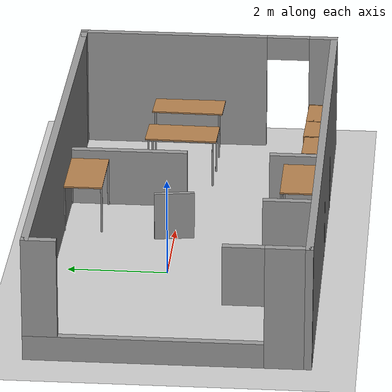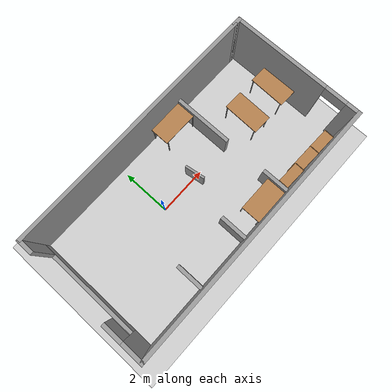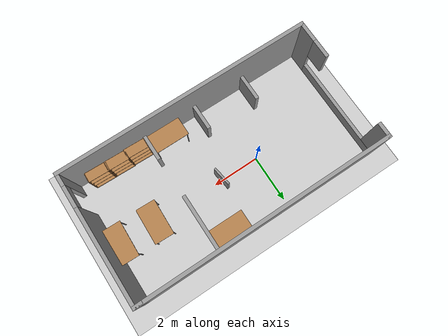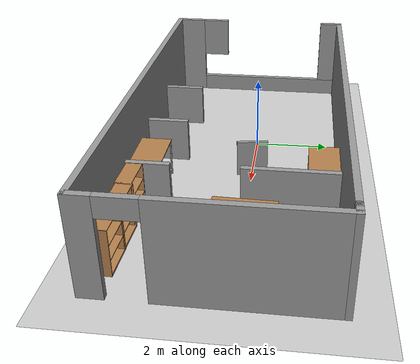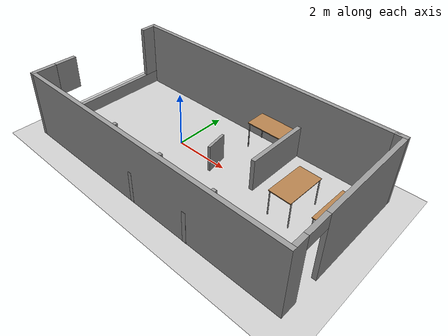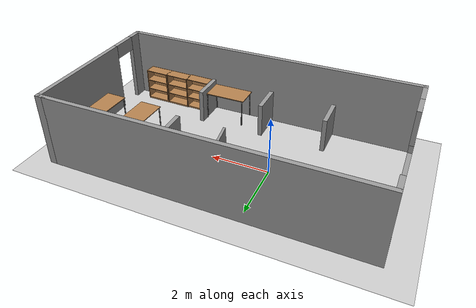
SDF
<sdf version="1.6">
 <world name="default">
  <model name="ground_plane">
   <static>1</static>
   <link name="link">
    <collision name="collision">
     <geometry><plane><normal>0 0 1</normal><size>100 100</size></plane></geometry>
     <surface><friction><ode><mu>100</mu><mu2>50</mu2></ode></friction></surface>
    </collision>
    <visual name="visual">
     <cast_shadows>0</cast_shadows>
     <geometry><plane><normal>0 0 1</normal><size>100 100</size></plane></geometry>
     <material>
      <script><uri>file://media/materials/scripts/gazebo.material</uri><name>Gazebo/Grey</name></script>
     </material>
    </visual>
   </link>
  </model>
  <model name="embd">
   <pose>1.33015 -0.337101 0 0 -0 0</pose>
   <link name="Wall_0">
    <collision name="Wall_0_Collision">
     <geometry><box><size>10.75 0.15 2.5</size></box></geometry>
     <pose>0 0 1.25 0 -0 0</pose>
    </collision>
    <visual name="Wall_0_Visual">
     <pose>0 0 1.25 0 -0 0</pose>
     <geometry><box><size>10.75 0.15 2.5</size></box></geometry>
     <material>
      <script><uri>file://media/materials/scripts/gazebo.material</uri><name>Gazebo/Grey</name></script>
      <ambient>1 1 1 1</ambient>
     </material>
     <meta><layer>0</layer></meta>
    </visual>
    <pose>0 -2.67233 0 0 -0 3.14159</pose>
   </link>
   <link name="Wall_10">
    <collision name="Wall_10_Collision">
     <geometry><box><size>2.5 0.15 1.2</size></box></geometry>
     <pose>0 0 0.6 0 -0 0</pose>
    </collision>
    <visual name="Wall_10_Visual">
     <pose>0 0 0.6 0 -0 0</pose>
     <geometry><box><size>2.5 0.15 1.2</size></box></geometry>
     <material>
      <script><uri>file://media/materials/scripts/gazebo.material</uri><name>Gazebo/Grey</name></script>
      <ambient>1 1 1 1</ambient>
     </material>
     <meta><layer>0</layer></meta>
    </visual>
    <pose>1.97567 1.45267 0 0 0 -1.5708</pose>
   </link>
   <link name="Wall_12">
    <collision name="Wall_12_Collision">
     <geometry><box><size>1.25 0.15 1.2</size></box></geometry>
     <pose>0 0 0.6 0 -0 0</pose>
    </collision>
    <visual name="Wall_12_Visual">
     <pose>0 0 0.6 0 -0 0</pose>
     <geometry><box><size>1.25 0.15 1.2</size></box></geometry>
     <material>
      <script><uri>file://media/materials/scripts/gazebo.material</uri><name>Gazebo/Grey</name></script>
      <ambient>1 1 1 1</ambient>
     </material>
     <meta><layer>0</layer></meta>
    </visual>
    <pose>2.00567 -2.12767 0 0 -0 1.5708</pose>
   </link>
   <link name="Wall_14">
    <collision name="Wall_14_Collision">
     <geometry><box><size>1.25 0.15 1.2</size></box></geometry>
     <pose>0 0 0.6 0 -0 0</pose>
    </collision>
    <visual name="Wall_14_Visual">
     <pose>0 0 0.6 0 -0 0</pose>
     <geometry><box><size>1.25 0.15 1.2</size></box></geometry>
     <material>
      <script><uri>file://media/materials/scripts/gazebo.material</uri><name>Gazebo/Grey</name></script>
      <ambient>1 1 1 1</ambient>
     </material>
     <meta><layer>0</layer></meta>
    </visual>
    <pose>-0.279 -2.12333 0 0 0 -1.5708</pose>
   </link>
   <link name="Wall_16">
    <collision name="Wall_16_Collision">
     <geometry><box><size>1.25 0.15 1.2</size></box></geometry>
     <pose>0 0 0.6 0 -0 0</pose>
    </collision>
    <visual name="Wall_16_Visual">
     <pose>0 0 0.6 0 -0 0</pose>
     <geometry><box><size>1.25 0.15 1.2</size></box></geometry>
     <material>
      <script><uri>file://media/materials/scripts/gazebo.material</uri><name>Gazebo/Grey</name></script>
      <ambient>1 1 1 1</ambient>
     </material>
     <meta><layer>0</layer></meta>
    </visual>
    <pose>-2.548 -2.10833 0 0 0 -1.5708</pose>
   </link>
   <link name="Wall_2">
    <pose>-5.3 0.002666 0 0 -0 1.5708</pose>
    <visual name="Wall_2_Visual_0">
     <pose>-2.294 0 1.25 0 -0 0</pose>
     <geometry><box><size>0.911993 0.15 2.5</size></box></geometry>
     <material>
      <script><uri>file://media/materials/scripts/gazebo.material</uri><name>Gazebo/Grey</name></script>
      <ambient>1 1 1 1</ambient>
     </material>
     <meta><layer>0</layer></meta>
    </visual>
    <collision name="Wall_2_Collision_0">
     <geometry><box><size>0.911993 0.15 2.5</size></box></geometry>
     <pose>-2.294 0 1.25 0 -0 0</pose>
    </collision>
    <visual name="Wall_2_Visual_1">
     <pose>0.455997 0 0.25 0 -0 0</pose>
     <geometry><box><size>4.58801 0.15 0.5</size></box></geometry>
     <material>
      <script><uri>file://media/materials/scripts/gazebo.material</uri><name>Gazebo/Grey</name></script>
      <ambient>1 1 1 1</ambient>
     </material>
     <meta><layer>0</layer></meta>
    </visual>
    <collision name="Wall_2_Collision_1">
     <geometry><box><size>4.58801 0.15 0.5</size></box></geometry>
     <pose>0.455997 0 0.25 0 -0 0</pose>
    </collision>
    <visual name="Wall_2_Visual_2">
     <pose>2.41233 0 1.5 0 -0 0</pose>
     <geometry><box><size>0.67534 0.15 2</size></box></geometry>
     <material>
      <script><uri>file://media/materials/scripts/gazebo.material</uri><name>Gazebo/Grey</name></script>
      <ambient>1 1 1 1</ambient>
     </material>
     <meta><layer>0</layer></meta>
    </visual>
    <collision name="Wall_2_Collision_2">
     <geometry><box><size>0.67534 0.15 2</size></box></geometry>
     <pose>2.41233 0 1.5 0 -0 0</pose>
    </collision>
    <visual name="Wall_2_Visual_3">
     <pose>-1.43934 0 1.9 0 -0 0</pose>
     <geometry><box><size>0.797333 0.15 1.2</size></box></geometry>
     <material>
      <script><uri>file://media/materials/scripts/gazebo.material</uri><name>Gazebo/Grey</name></script>
      <ambient>1 1 1 1</ambient>
     </material>
     <meta><layer>0</layer></meta>
    </visual>
    <collision name="Wall_2_Collision_3">
     <geometry><box><size>0.797333 0.15 1.2</size></box></geometry>
     <pose>-1.43934 0 1.9 0 -0 0</pose>
    </collision>
   </link>
   <link name="Wall_3">
    <collision name="Wall_3_Collision">
     <geometry><box><size>10.5 0.15 2.5</size></box></geometry>
     <pose>0 0 1.25 0 -0 0</pose>
    </collision>
    <visual name="Wall_3_Visual">
     <pose>0 0 1.25 0 -0 0</pose>
     <geometry><box><size>10.5 0.15 2.5</size></box></geometry>
     <material>
      <script><uri>file://media/materials/scripts/gazebo.material</uri><name>Gazebo/Grey</name></script>
      <ambient>1 1 1 1</ambient>
     </material>
     <meta><layer>0</layer></meta>
    </visual>
    <pose>-0.125 2.67767 0 0 -0 0</pose>
   </link>
   <link name="Wall_5">
    <pose>5.3 0.002666 0 0 -0 1.5708</pose>
    <visual name="Wall_5_Visual_0">
     <pose>-2.44934 0 1.25 0 -0 0</pose>
     <geometry><box><size>0.601327 0.15 2.5</size></box></geometry>
     <material>
      <script><uri>file://media/materials/scripts/gazebo.material</uri><name>Gazebo/Grey</name></script>
      <ambient>1 1 1 1</ambient>
     </material>
     <meta><layer>0</layer></meta>
    </visual>
    <collision name="Wall_5_Collision_0">
     <geometry><box><size>0.601327 0.15 2.5</size></box></geometry>
     <pose>-2.44934 0 1.25 0 -0 0</pose>
    </collision>
    <visual name="Wall_5_Visual_1">
     <pose>0.750663 0 1.25 0 -0 0</pose>
     <geometry><box><size>3.99867 0.15 2.5</size></box></geometry>
     <material>
      <script><uri>file://media/materials/scripts/gazebo.material</uri><name>Gazebo/Grey</name></script>
      <ambient>1 1 1 1</ambient>
     </material>
     <meta><layer>0</layer></meta>
    </visual>
    <collision name="Wall_5_Collision_1">
     <geometry><box><size>3.99867 0.15 2.5</size></box></geometry>
     <pose>0.750663 0 1.25 0 -0 0</pose>
    </collision>
    <visual name="Wall_5_Visual_2">
     <pose>-1.69867 0 2.25 0 -0 0</pose>
     <geometry><box><size>0.9 0.15 0.5</size></box></geometry>
     <material>
      <script><uri>file://media/materials/scripts/gazebo.material</uri><name>Gazebo/Grey</name></script>
      <ambient>1 1 1 1</ambient>
     </material>
     <meta><layer>0</layer></meta>
    </visual>
    <collision name="Wall_5_Collision_2">
     <geometry><box><size>0.9 0.15 0.5</size></box></geometry>
     <pose>-1.69867 0 2.25 0 -0 0</pose>
    </collision>
   </link>
   <link name="Wall_6">
    <collision name="Wall_6_Collision">
     <geometry><box><size>0.4 0.15 2.5</size></box></geometry>
     <pose>0 0 1.25 0 -0 0</pose>
    </collision>
    <visual name="Wall_6_Visual">
     <pose>0 0 1.25 0 -0 0</pose>
     <geometry><box><size>0.4 0.15 2.5</size></box></geometry>
     <material>
      <script><uri>file://media/materials/scripts/gazebo.material</uri><name>Gazebo/Grey</name></script>
      <ambient>1 1 1 1</ambient>
     </material>
     <meta><layer>0</layer></meta>
    </visual>
    <pose>5.175 2.67767 0 0 0 -3.14159</pose>
   </link>
   <static>1</static>
  </model>
  <model name="table">
   <static>1</static>
   <link name="link">
    <collision name="surface">
     <pose>0 0 1 0 -0 0</pose>
     <geometry><box><size>1.5 0.8 0.03</size></box></geometry>
     <surface><friction><ode><mu>0.6</mu><mu2>0.6</mu2></ode></friction></surface>
    </collision>
    <visual name="visual1">
     <pose>0 0 1 0 -0 0</pose>
     <geometry><box><size>1.5 0.8 0.03</size></box></geometry>
     <material>
      <script><uri>file://media/materials/scripts/gazebo.material</uri><name>Gazebo/Wood</name></script>
     </material>
    </visual>
    <collision name="front_left_leg">
     <pose>0.68 0.38 0.5 0 -0 0</pose>
     <geometry><cylinder><radius>0.02</radius><length>1</length></cylinder></geometry>
    </collision>
    <visual name="front_left_leg">
     <pose>0.68 0.38 0.5 0 -0 0</pose>
     <geometry><cylinder><radius>0.02</radius><length>1</length></cylinder></geometry>
     <material>
      <script><uri>file://media/materials/scripts/gazebo.material</uri><name>Gazebo/Grey</name></script>
     </material>
    </visual>
    <collision name="front_right_leg">
     <pose>0.68 -0.38 0.5 0 -0 0</pose>
     <geometry><cylinder><radius>0.02</radius><length>1</length></cylinder></geometry>
    </collision>
    <visual name="front_right_leg">
     <pose>0.68 -0.38 0.5 0 -0 0</pose>
     <geometry><cylinder><radius>0.02</radius><length>1</length></cylinder></geometry>
     <material>
      <script><uri>file://media/materials/scripts/gazebo.material</uri><name>Gazebo/Grey</name></script>
     </material>
    </visual>
    <collision name="back_right_leg">
     <pose>-0.68 -0.38 0.5 0 -0 0</pose>
     <geometry><cylinder><radius>0.02</radius><length>1</length></cylinder></geometry>
    </collision>
    <visual name="back_right_leg">
     <pose>-0.68 -0.38 0.5 0 -0 0</pose>
     <geometry><cylinder><radius>0.02</radius><length>1</length></cylinder></geometry>
     <material>
      <script><uri>file://media/materials/scripts/gazebo.material</uri><name>Gazebo/Grey</name></script>
     </material>
    </visual>
    <collision name="back_left_leg">
     <pose>-0.68 0.38 0.5 0 -0 0</pose>
     <geometry><cylinder><radius>0.02</radius><length>1</length></cylinder></geometry>
    </collision>
    <visual name="back_left_leg">
     <pose>-0.68 0.38 0.5 0 -0 0</pose>
     <geometry><cylinder><radius>0.02</radius><length>1</length></cylinder></geometry>
     <material>
      <script><uri>file://media/materials/scripts/gazebo.material</uri><name>Gazebo/Grey</name></script>
     </material>
    </visual>
   </link>
   <pose>2.56797 -2.53725 0 0 -0 0</pose>
  </model>
  <model name="table_0">
   <static>1</static>
   <link name="link">
    <collision name="surface">
     <pose>0 0 1 0 -0 0</pose>
     <geometry><box><size>1.5 0.8 0.03</size></box></geometry>
     <surface><friction><ode><mu>0.6</mu><mu2>0.6</mu2></ode></friction></surface>
    </collision>
    <visual name="visual1">
     <pose>0 0 1 0 -0 0</pose>
     <geometry><box><size>1.5 0.8 0.03</size></box></geometry>
     <material>
      <script><uri>file://media/materials/scripts/gazebo.material</uri><name>Gazebo/Wood</name></script>
     </material>
    </visual>
    <collision name="front_left_leg">
     <pose>0.68 0.38 0.5 0 -0 0</pose>
     <geometry><cylinder><radius>0.02</radius><length>1</length></cylinder></geometry>
    </collision>
    <visual name="front_left_leg">
     <pose>0.68 0.38 0.5 0 -0 0</pose>
     <geometry><cylinder><radius>0.02</radius><length>1</length></cylinder></geometry>
     <material>
      <script><uri>file://media/materials/scripts/gazebo.material</uri><name>Gazebo/Grey</name></script>
     </material>
    </visual>
    <collision name="front_right_leg">
     <pose>0.68 -0.38 0.5 0 -0 0</pose>
     <geometry><cylinder><radius>0.02</radius><length>1</length></cylinder></geometry>
    </collision>
    <visual name="front_right_leg">
     <pose>0.68 -0.38 0.5 0 -0 0</pose>
     <geometry><cylinder><radius>0.02</radius><length>1</length></cylinder></geometry>
     <material>
      <script><uri>file://media/materials/scripts/gazebo.material</uri><name>Gazebo/Grey</name></script>
     </material>
    </visual>
    <collision name="back_right_leg">
     <pose>-0.68 -0.38 0.5 0 -0 0</pose>
     <geometry><cylinder><radius>0.02</radius><length>1</length></cylinder></geometry>
    </collision>
    <visual name="back_right_leg">
     <pose>-0.68 -0.38 0.5 0 -0 0</pose>
     <geometry><cylinder><radius>0.02</radius><length>1</length></cylinder></geometry>
     <material>
      <script><uri>file://media/materials/scripts/gazebo.material</uri><name>Gazebo/Grey</name></script>
     </material>
    </visual>
    <collision name="back_left_leg">
     <pose>-0.68 0.38 0.5 0 -0 0</pose>
     <geometry><cylinder><radius>0.02</radius><length>1</length></cylinder></geometry>
    </collision>
    <visual name="back_left_leg">
     <pose>-0.68 0.38 0.5 0 -0 0</pose>
     <geometry><cylinder><radius>0.02</radius><length>1</length></cylinder></geometry>
     <material>
      <script><uri>file://media/materials/scripts/gazebo.material</uri><name>Gazebo/Grey</name></script>
     </material>
    </visual>
   </link>
   <pose>4.73129 0.079756 0 0 0 -1.59697</pose>
  </model>
  <model name="table_0_clone">
   <static>1</static>
   <link name="link">
    <collision name="surface">
     <pose>0 0 1 0 -0 0</pose>
     <geometry><box><size>1.5 0.8 0.03</size></box></geometry>
     <surface><friction><ode><mu>0.6</mu><mu2>0.6</mu2></ode></friction></surface>
    </collision>
    <visual name="visual1">
     <pose>0 0 1 0 -0 0</pose>
     <geometry><box><size>1.5 0.8 0.03</size></box></geometry>
     <material>
      <script><uri>file://media/materials/scripts/gazebo.material</uri><name>Gazebo/Wood</name></script>
     </material>
    </visual>
    <collision name="front_left_leg">
     <pose>0.68 0.38 0.5 0 -0 0</pose>
     <geometry><cylinder><radius>0.02</radius><length>1</length></cylinder></geometry>
    </collision>
    <visual name="front_left_leg">
     <pose>0.68 0.38 0.5 0 -0 0</pose>
     <geometry><cylinder><radius>0.02</radius><length>1</length></cylinder></geometry>
     <material>
      <script><uri>file://media/materials/scripts/gazebo.material</uri><name>Gazebo/Grey</name></script>
     </material>
    </visual>
    <collision name="front_right_leg">
     <pose>0.68 -0.38 0.5 0 -0 0</pose>
     <geometry><cylinder><radius>0.02</radius><length>1</length></cylinder></geometry>
    </collision>
    <visual name="front_right_leg">
     <pose>0.68 -0.38 0.5 0 -0 0</pose>
     <geometry><cylinder><radius>0.02</radius><length>1</length></cylinder></geometry>
     <material>
      <script><uri>file://media/materials/scripts/gazebo.material</uri><name>Gazebo/Grey</name></script>
     </material>
    </visual>
    <collision name="back_right_leg">
     <pose>-0.68 -0.38 0.5 0 -0 0</pose>
     <geometry><cylinder><radius>0.02</radius><length>1</length></cylinder></geometry>
    </collision>
    <visual name="back_right_leg">
     <pose>-0.68 -0.38 0.5 0 -0 0</pose>
     <geometry><cylinder><radius>0.02</radius><length>1</length></cylinder></geometry>
     <material>
      <script><uri>file://media/materials/scripts/gazebo.material</uri><name>Gazebo/Grey</name></script>
     </material>
    </visual>
    <collision name="back_left_leg">
     <pose>-0.68 0.38 0.5 0 -0 0</pose>
     <geometry><cylinder><radius>0.02</radius><length>1</length></cylinder></geometry>
    </collision>
    <visual name="back_left_leg">
     <pose>-0.68 0.38 0.5 0 -0 0</pose>
     <geometry><cylinder><radius>0.02</radius><length>1</length></cylinder></geometry>
     <material>
      <script><uri>file://media/materials/scripts/gazebo.material</uri><name>Gazebo/Grey</name></script>
     </material>
    </visual>
   </link>
   <pose>6.22449 0.057415 0 0 0 -1.59697</pose>
  </model>
  <model name="table_clone_3">
   <static>1</static>
   <link name="link">
    <collision name="surface">
     <pose>0 0 1 0 -0 0</pose>
     <geometry><box><size>1.5 0.8 0.03</size></box></geometry>
     <surface><friction><ode><mu>0.6</mu><mu2>0.6</mu2></ode></friction></surface>
    </collision>
    <visual name="visual1">
     <pose>0 0 1 0 -0 0</pose>
     <geometry><box><size>1.5 0.8 0.03</size></box></geometry>
     <material>
      <script><uri>file://media/materials/scripts/gazebo.material</uri><name>Gazebo/Wood</name></script>
     </material>
    </visual>
    <collision name="front_left_leg">
     <pose>0.68 0.38 0.5 0 -0 0</pose>
     <geometry><cylinder><radius>0.02</radius><length>1</length></cylinder></geometry>
    </collision>
    <visual name="front_left_leg">
     <pose>0.68 0.38 0.5 0 -0 0</pose>
     <geometry><cylinder><radius>0.02</radius><length>1</length></cylinder></geometry>
     <material>
      <script><uri>file://media/materials/scripts/gazebo.material</uri><name>Gazebo/Grey</name></script>
     </material>
    </visual>
    <collision name="front_right_leg">
     <pose>0.68 -0.38 0.5 0 -0 0</pose>
     <geometry><cylinder><radius>0.02</radius><length>1</length></cylinder></geometry>
    </collision>
    <visual name="front_right_leg">
     <pose>0.68 -0.38 0.5 0 -0 0</pose>
     <geometry><cylinder><radius>0.02</radius><length>1</length></cylinder></geometry>
     <material>
      <script><uri>file://media/materials/scripts/gazebo.material</uri><name>Gazebo/Grey</name></script>
     </material>
    </visual>
    <collision name="back_right_leg">
     <pose>-0.68 -0.38 0.5 0 -0 0</pose>
     <geometry><cylinder><radius>0.02</radius><length>1</length></cylinder></geometry>
    </collision>
    <visual name="back_right_leg">
     <pose>-0.68 -0.38 0.5 0 -0 0</pose>
     <geometry><cylinder><radius>0.02</radius><length>1</length></cylinder></geometry>
     <material>
      <script><uri>file://media/materials/scripts/gazebo.material</uri><name>Gazebo/Grey</name></script>
     </material>
    </visual>
    <collision name="back_left_leg">
     <pose>-0.68 0.38 0.5 0 -0 0</pose>
     <geometry><cylinder><radius>0.02</radius><length>1</length></cylinder></geometry>
    </collision>
    <visual name="back_left_leg">
     <pose>-0.68 0.38 0.5 0 -0 0</pose>
     <geometry><cylinder><radius>0.02</radius><length>1</length></cylinder></geometry>
     <material>
      <script><uri>file://media/materials/scripts/gazebo.material</uri><name>Gazebo/Grey</name></script>
     </material>
    </visual>
   </link>
   <pose>2.52395 1.8828 0 0 -0 0</pose>
  </model>
  <model name="bookshelf">
   <static>1</static>
   <link name="link">
    <inertial><mass>1</mass></inertial>
    <collision name="back">
     <pose>0 0.005 0.6 0 -0 0</pose>
     <geometry><box><size>0.9 0.01 1.2</size></box></geometry>
    </collision>
    <visual name="visual1">
     <pose>0 0.005 0.6 0 -0 0</pose>
     <geometry><box><size>0.9 0.01 1.2</size></box></geometry>
     <material>
      <script><uri>file://media/materials/scripts/gazebo.material</uri><name>Gazebo/Wood</name></script>
     </material>
    </visual>
    <collision name="left_side">
     <pose>0.45 -0.195 0.6 0 -0 0</pose>
     <geometry><box><size>0.02 0.4 1.2</size></box></geometry>
    </collision>
    <visual name="visual2">
     <pose>0.45 -0.195 0.6 0 -0 0</pose>
     <geometry><box><size>0.02 0.4 1.2</size></box></geometry>
     <material>
      <script><uri>file://media/materials/scripts/gazebo.material</uri><name>Gazebo/Wood</name></script>
     </material>
    </visual>
    <collision name="right_side">
     <pose>-0.45 -0.195 0.6 0 -0 0</pose>
     <geometry><box><size>0.02 0.4 1.2</size></box></geometry>
    </collision>
    <visual name="visual3">
     <pose>-0.45 -0.195 0.6 0 -0 0</pose>
     <geometry><box><size>0.02 0.4 1.2</size></box></geometry>
     <material>
      <script><uri>file://media/materials/scripts/gazebo.material</uri><name>Gazebo/Wood</name></script>
     </material>
    </visual>
    <collision name="bottom">
     <pose>0 -0.195 0.03 0 -0 0</pose>
     <geometry><box><size>0.88 0.4 0.06</size></box></geometry>
    </collision>
    <visual name="visual4">
     <pose>0 -0.195 0.03 0 -0 0</pose>
     <geometry><box><size>0.88 0.4 0.06</size></box></geometry>
     <material>
      <script><uri>file://media/materials/scripts/gazebo.material</uri><name>Gazebo/Wood</name></script>
     </material>
    </visual>
    <collision name="top">
     <pose>0 -0.195 1.19 0 -0 0</pose>
     <geometry><box><size>0.88 0.4 0.02</size></box></geometry>
    </collision>
    <visual name="visual5">
     <pose>0 -0.195 1.19 0 -0 0</pose>
     <geometry><box><size>0.88 0.4 0.02</size></box></geometry>
     <material>
      <script><uri>file://media/materials/scripts/gazebo.material</uri><name>Gazebo/Wood</name></script>
     </material>
    </visual>
    <collision name="low_shelf">
     <pose>0 -0.195 0.43 0 -0 0</pose>
     <geometry><box><size>0.88 0.4 0.02</size></box></geometry>
    </collision>
    <visual name="visual6">
     <pose>0 -0.195 0.43 0 -0 0</pose>
     <geometry><box><size>0.88 0.4 0.02</size></box></geometry>
     <material>
      <script><uri>file://media/materials/scripts/gazebo.material</uri><name>Gazebo/Wood</name></script>
     </material>
    </visual>
    <collision name="high_shelf">
     <pose>0 -0.195 0.8 0 -0 0</pose>
     <geometry><box><size>0.88 0.4 0.02</size></box></geometry>
    </collision>
    <visual name="visual7">
     <pose>0 -0.195 0.8 0 -0 0</pose>
     <geometry><box><size>0.88 0.4 0.02</size></box></geometry>
     <material>
      <script><uri>file://media/materials/scripts/gazebo.material</uri><name>Gazebo/Wood</name></script>
     </material>
    </visual>
   </link>
   <pose>3.85882 -2.89646 0 0 -0 3.11241</pose>
  </model>
  <model name="bookshelf_clone">
   <static>1</static>
   <link name="link">
    <inertial><mass>1</mass></inertial>
    <collision name="back">
     <pose>0 0.005 0.6 0 -0 0</pose>
     <geometry><box><size>0.9 0.01 1.2</size></box></geometry>
    </collision>
    <visual name="visual1">
     <pose>0 0.005 0.6 0 -0 0</pose>
     <geometry><box><size>0.9 0.01 1.2</size></box></geometry>
     <material>
      <script><uri>file://media/materials/scripts/gazebo.material</uri><name>Gazebo/Wood</name></script>
     </material>
    </visual>
    <collision name="left_side">
     <pose>0.45 -0.195 0.6 0 -0 0</pose>
     <geometry><box><size>0.02 0.4 1.2</size></box></geometry>
    </collision>
    <visual name="visual2">
     <pose>0.45 -0.195 0.6 0 -0 0</pose>
     <geometry><box><size>0.02 0.4 1.2</size></box></geometry>
     <material>
      <script><uri>file://media/materials/scripts/gazebo.material</uri><name>Gazebo/Wood</name></script>
     </material>
    </visual>
    <collision name="right_side">
     <pose>-0.45 -0.195 0.6 0 -0 0</pose>
     <geometry><box><size>0.02 0.4 1.2</size></box></geometry>
    </collision>
    <visual name="visual3">
     <pose>-0.45 -0.195 0.6 0 -0 0</pose>
     <geometry><box><size>0.02 0.4 1.2</size></box></geometry>
     <material>
      <script><uri>file://media/materials/scripts/gazebo.material</uri><name>Gazebo/Wood</name></script>
     </material>
    </visual>
    <collision name="bottom">
     <pose>0 -0.195 0.03 0 -0 0</pose>
     <geometry><box><size>0.88 0.4 0.06</size></box></geometry>
    </collision>
    <visual name="visual4">
     <pose>0 -0.195 0.03 0 -0 0</pose>
     <geometry><box><size>0.88 0.4 0.06</size></box></geometry>
     <material>
      <script><uri>file://media/materials/scripts/gazebo.material</uri><name>Gazebo/Wood</name></script>
     </material>
    </visual>
    <collision name="top">
     <pose>0 -0.195 1.19 0 -0 0</pose>
     <geometry><box><size>0.88 0.4 0.02</size></box></geometry>
    </collision>
    <visual name="visual5">
     <pose>0 -0.195 1.19 0 -0 0</pose>
     <geometry><box><size>0.88 0.4 0.02</size></box></geometry>
     <material>
      <script><uri>file://media/materials/scripts/gazebo.material</uri><name>Gazebo/Wood</name></script>
     </material>
    </visual>
    <collision name="low_shelf">
     <pose>0 -0.195 0.43 0 -0 0</pose>
     <geometry><box><size>0.88 0.4 0.02</size></box></geometry>
    </collision>
    <visual name="visual6">
     <pose>0 -0.195 0.43 0 -0 0</pose>
     <geometry><box><size>0.88 0.4 0.02</size></box></geometry>
     <material>
      <script><uri>file://media/materials/scripts/gazebo.material</uri><name>Gazebo/Wood</name></script>
     </material>
    </visual>
    <collision name="high_shelf">
     <pose>0 -0.195 0.8 0 -0 0</pose>
     <geometry><box><size>0.88 0.4 0.02</size></box></geometry>
    </collision>
    <visual name="visual7">
     <pose>0 -0.195 0.8 0 -0 0</pose>
     <geometry><box><size>0.88 0.4 0.02</size></box></geometry>
     <material>
      <script><uri>file://media/materials/scripts/gazebo.material</uri><name>Gazebo/Wood</name></script>
     </material>
    </visual>
   </link>
   <pose>4.72354 -2.89034 0 0 -0 3.11241</pose>
  </model>
  <model name="bookshelf_clone_0">
   <static>1</static>
   <link name="link">
    <inertial><mass>1</mass></inertial>
    <collision name="back">
     <pose>0 0.005 0.6 0 -0 0</pose>
     <geometry><box><size>0.9 0.01 1.2</size></box></geometry>
    </collision>
    <visual name="visual1">
     <pose>0 0.005 0.6 0 -0 0</pose>
     <geometry><box><size>0.9 0.01 1.2</size></box></geometry>
     <material>
      <script><uri>file://media/materials/scripts/gazebo.material</uri><name>Gazebo/Wood</name></script>
     </material>
    </visual>
    <collision name="left_side">
     <pose>0.45 -0.195 0.6 0 -0 0</pose>
     <geometry><box><size>0.02 0.4 1.2</size></box></geometry>
    </collision>
    <visual name="visual2">
     <pose>0.45 -0.195 0.6 0 -0 0</pose>
     <geometry><box><size>0.02 0.4 1.2</size></box></geometry>
     <material>
      <script><uri>file://media/materials/scripts/gazebo.material</uri><name>Gazebo/Wood</name></script>
     </material>
    </visual>
    <collision name="right_side">
     <pose>-0.45 -0.195 0.6 0 -0 0</pose>
     <geometry><box><size>0.02 0.4 1.2</size></box></geometry>
    </collision>
    <visual name="visual3">
     <pose>-0.45 -0.195 0.6 0 -0 0</pose>
     <geometry><box><size>0.02 0.4 1.2</size></box></geometry>
     <material>
      <script><uri>file://media/materials/scripts/gazebo.material</uri><name>Gazebo/Wood</name></script>
     </material>
    </visual>
    <collision name="bottom">
     <pose>0 -0.195 0.03 0 -0 0</pose>
     <geometry><box><size>0.88 0.4 0.06</size></box></geometry>
    </collision>
    <visual name="visual4">
     <pose>0 -0.195 0.03 0 -0 0</pose>
     <geometry><box><size>0.88 0.4 0.06</size></box></geometry>
     <material>
      <script><uri>file://media/materials/scripts/gazebo.material</uri><name>Gazebo/Wood</name></script>
     </material>
    </visual>
    <collision name="top">
     <pose>0 -0.195 1.19 0 -0 0</pose>
     <geometry><box><size>0.88 0.4 0.02</size></box></geometry>
    </collision>
    <visual name="visual5">
     <pose>0 -0.195 1.19 0 -0 0</pose>
     <geometry><box><size>0.88 0.4 0.02</size></box></geometry>
     <material>
      <script><uri>file://media/materials/scripts/gazebo.material</uri><name>Gazebo/Wood</name></script>
     </material>
    </visual>
    <collision name="low_shelf">
     <pose>0 -0.195 0.43 0 -0 0</pose>
     <geometry><box><size>0.88 0.4 0.02</size></box></geometry>
    </collision>
    <visual name="visual6">
     <pose>0 -0.195 0.43 0 -0 0</pose>
     <geometry><box><size>0.88 0.4 0.02</size></box></geometry>
     <material>
      <script><uri>file://media/materials/scripts/gazebo.material</uri><name>Gazebo/Wood</name></script>
     </material>
    </visual>
    <collision name="high_shelf">
     <pose>0 -0.195 0.8 0 -0 0</pose>
     <geometry><box><size>0.88 0.4 0.02</size></box></geometry>
    </collision>
    <visual name="visual7">
     <pose>0 -0.195 0.8 0 -0 0</pose>
     <geometry><box><size>0.88 0.4 0.02</size></box></geometry>
     <material>
      <script><uri>file://media/materials/scripts/gazebo.material</uri><name>Gazebo/Wood</name></script>
     </material>
    </visual>
   </link>
   <pose>5.56806 -2.90837 0 0 -0 3.11241</pose>
  </model>
  <model name="unit_box">
   <pose>1.67071 -0.001188 0.499998 5e-06 -0 0.150818</pose>
   <link name="link">
    <inertial>
     <mass>1</mass>
     <inertia>
      <ixx>0.166667</ixx>
      <ixy>0</ixy>
      <ixz>0</ixz>
      <iyy>0.166667</iyy>
      <iyz>0</iyz>
      <izz>0.166667</izz>
     </inertia>
    </inertial>
    <collision name="collision"><geometry><box><size>0.0893916 0.81561 1</size></box></geometry></collision>
    <visual name="visual">
     <geometry><box><size>0.0893916 0.81561 1</size></box></geometry>
     <material>
      <script><name>Gazebo/Grey</name><uri>file://media/materials/scripts/gazebo.material</uri></script>
     </material>
    </visual>
   </link>
  </model>
 </world>
</sdf>
